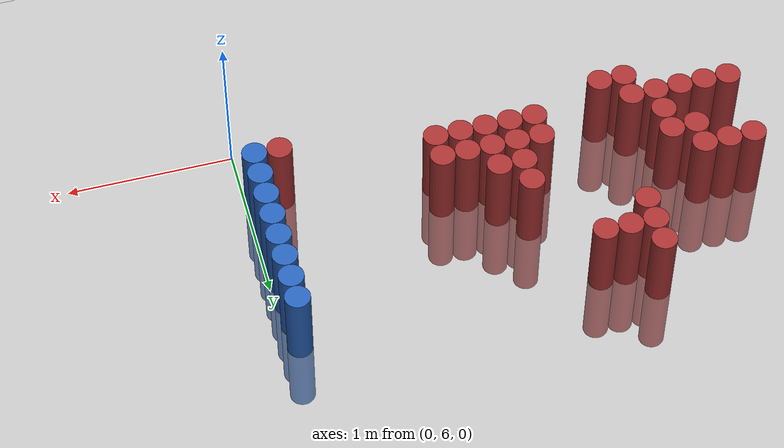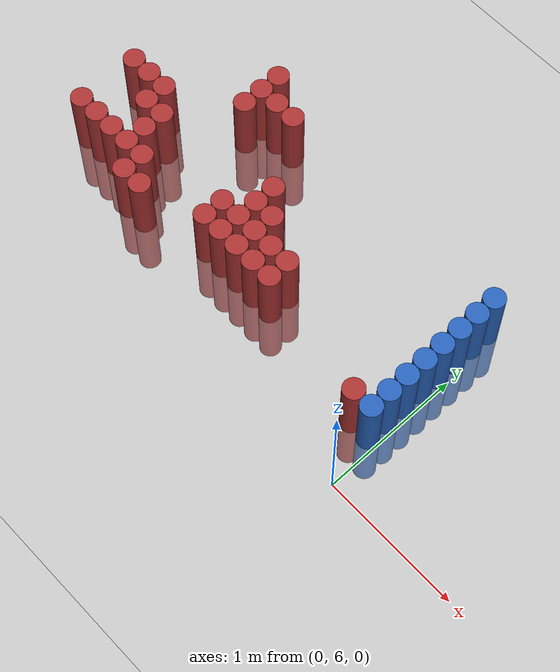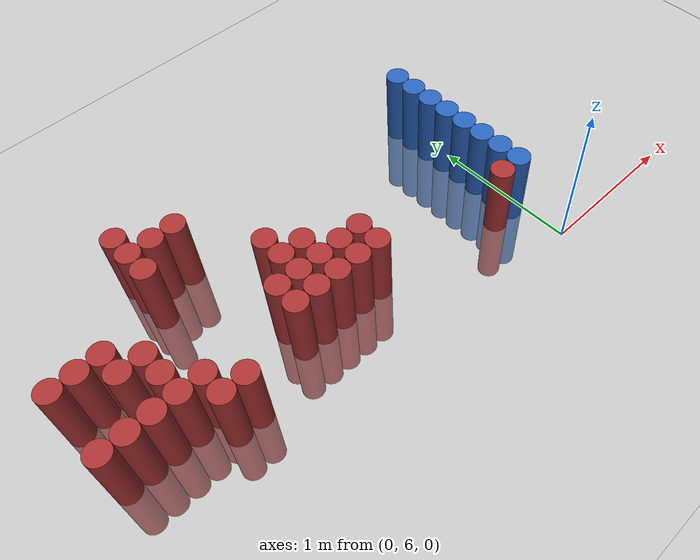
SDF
<sdf version="1.6">
 <world name="default">
  <model name="ground_plane">
   <static>1</static>
   <link name="link">
    <collision name="collision">
     <geometry><plane><normal>0 0 1</normal><size>100 100</size></plane></geometry>
     <surface><friction><ode><mu>100</mu><mu2>50</mu2></ode></friction></surface>
    </collision>
    <visual name="visual">
     <cast_shadows>0</cast_shadows>
     <geometry><plane><normal>0 0 1</normal><size>100 100</size></plane></geometry>
     <material>
      <script><uri>file://media/materials/scripts/gazebo.material</uri><name>Gazebo/Grey</name></script>
     </material>
    </visual>
   </link>
  </model>
  <model name="unit_cylinder_214">
   <static>1</static>
   <pose>-2.925000 6.525000 0.000000 0.000000 0.000000 0.000000</pose>
   <link name="link">
    <inertial>
     <mass>1</mass>
     <inertia><ixx>0.145833</ixx><ixy>0</ixy><ixz>0</ixz><iyy>0.145833</iyy><iyz>0</iyz><izz>0.125</izz></inertia>
    </inertial>
    <collision name="collision">
     <geometry><cylinder><radius>0.075000</radius><length>1</length></cylinder></geometry>
    </collision>
    <visual name="visual">
     <geometry><cylinder><radius>0.075000</radius><length>1</length></cylinder></geometry>
     <material>
      <ambient>0.648000 0.192000 0.192000 1</ambient>
      <diffuse>0.648000 0.192000 0.192000 1</diffuse>
     </material>
     <material>
      <script><name>Gazebo/Grey</name><uri>file://media/materials/scripts/gazebo.material</uri></script>
     </material>
    </visual>
    <sensor name="sensor_contact" type="contact"><contact><collision>collision</collision></contact></sensor>
   </link>
   <plugin filename="gz-sim-touchplugin-system" name="gz::sim::systems::TouchPlugin">
    <target>robot</target>
    <namespace>robot</namespace>
    <time>0.001</time>
    <enabled>true</enabled>
   </plugin>
  </model>
  <model name="unit_cylinder_215">
   <static>1</static>
   <pose>-2.925000 6.975000 0.000000 0.000000 0.000000 0.000000</pose>
   <link name="link">
    <inertial>
     <mass>1</mass>
     <inertia><ixx>0.145833</ixx><ixy>0</ixy><ixz>0</ixz><iyy>0.145833</iyy><iyz>0</iyz><izz>0.125</izz></inertia>
    </inertial>
    <collision name="collision">
     <geometry><cylinder><radius>0.075000</radius><length>1</length></cylinder></geometry>
    </collision>
    <visual name="visual">
     <geometry><cylinder><radius>0.075000</radius><length>1</length></cylinder></geometry>
     <material>
      <ambient>0.648000 0.192000 0.192000 1</ambient>
      <diffuse>0.648000 0.192000 0.192000 1</diffuse>
     </material>
     <material>
      <script><name>Gazebo/Grey</name><uri>file://media/materials/scripts/gazebo.material</uri></script>
     </material>
    </visual>
    <sensor name="sensor_contact" type="contact"><contact><collision>collision</collision></contact></sensor>
   </link>
   <plugin filename="gz-sim-touchplugin-system" name="gz::sim::systems::TouchPlugin">
    <target>robot</target>
    <namespace>robot</namespace>
    <time>0.001</time>
    <enabled>true</enabled>
   </plugin>
  </model>
  <model name="unit_cylinder_218">
   <static>1</static>
   <pose>-2.775000 6.525000 0.000000 0.000000 0.000000 0.000000</pose>
   <link name="link">
    <inertial>
     <mass>1</mass>
     <inertia><ixx>0.145833</ixx><ixy>0</ixy><ixz>0</ixz><iyy>0.145833</iyy><iyz>0</iyz><izz>0.125</izz></inertia>
    </inertial>
    <collision name="collision">
     <geometry><cylinder><radius>0.075000</radius><length>1</length></cylinder></geometry>
    </collision>
    <visual name="visual">
     <geometry><cylinder><radius>0.075000</radius><length>1</length></cylinder></geometry>
     <material>
      <ambient>0.648000 0.192000 0.192000 1</ambient>
      <diffuse>0.648000 0.192000 0.192000 1</diffuse>
     </material>
     <material>
      <script><name>Gazebo/Grey</name><uri>file://media/materials/scripts/gazebo.material</uri></script>
     </material>
    </visual>
    <sensor name="sensor_contact" type="contact"><contact><collision>collision</collision></contact></sensor>
   </link>
   <plugin filename="gz-sim-touchplugin-system" name="gz::sim::systems::TouchPlugin">
    <target>robot</target>
    <namespace>robot</namespace>
    <time>0.001</time>
    <enabled>true</enabled>
   </plugin>
  </model>
  <model name="unit_cylinder_219">
   <static>1</static>
   <pose>-2.775000 6.975000 0.000000 0.000000 0.000000 0.000000</pose>
   <link name="link">
    <inertial>
     <mass>1</mass>
     <inertia><ixx>0.145833</ixx><ixy>0</ixy><ixz>0</ixz><iyy>0.145833</iyy><iyz>0</iyz><izz>0.125</izz></inertia>
    </inertial>
    <collision name="collision">
     <geometry><cylinder><radius>0.075000</radius><length>1</length></cylinder></geometry>
    </collision>
    <visual name="visual">
     <geometry><cylinder><radius>0.075000</radius><length>1</length></cylinder></geometry>
     <material>
      <ambient>0.648000 0.192000 0.192000 1</ambient>
      <diffuse>0.648000 0.192000 0.192000 1</diffuse>
     </material>
     <material>
      <script><name>Gazebo/Grey</name><uri>file://media/materials/scripts/gazebo.material</uri></script>
     </material>
    </visual>
    <sensor name="sensor_contact" type="contact"><contact><collision>collision</collision></contact></sensor>
   </link>
   <plugin filename="gz-sim-touchplugin-system" name="gz::sim::systems::TouchPlugin">
    <target>robot</target>
    <namespace>robot</namespace>
    <time>0.001</time>
    <enabled>true</enabled>
   </plugin>
  </model>
  <model name="unit_cylinder_227">
   <static>1</static>
   <pose>-2.625000 6.525000 0.000000 0.000000 0.000000 0.000000</pose>
   <link name="link">
    <inertial>
     <mass>1</mass>
     <inertia><ixx>0.145833</ixx><ixy>0</ixy><ixz>0</ixz><iyy>0.145833</iyy><iyz>0</iyz><izz>0.125</izz></inertia>
    </inertial>
    <collision name="collision">
     <geometry><cylinder><radius>0.075000</radius><length>1</length></cylinder></geometry>
    </collision>
    <visual name="visual">
     <geometry><cylinder><radius>0.075000</radius><length>1</length></cylinder></geometry>
     <material>
      <ambient>0.648000 0.192000 0.192000 1</ambient>
      <diffuse>0.648000 0.192000 0.192000 1</diffuse>
     </material>
     <material>
      <script><name>Gazebo/Grey</name><uri>file://media/materials/scripts/gazebo.material</uri></script>
     </material>
    </visual>
    <sensor name="sensor_contact" type="contact"><contact><collision>collision</collision></contact></sensor>
   </link>
   <plugin filename="gz-sim-touchplugin-system" name="gz::sim::systems::TouchPlugin">
    <target>robot</target>
    <namespace>robot</namespace>
    <time>0.001</time>
    <enabled>true</enabled>
   </plugin>
  </model>
  <model name="unit_cylinder_228">
   <static>1</static>
   <pose>-2.625000 6.825000 0.000000 0.000000 0.000000 0.000000</pose>
   <link name="link">
    <inertial>
     <mass>1</mass>
     <inertia><ixx>0.145833</ixx><ixy>0</ixy><ixz>0</ixz><iyy>0.145833</iyy><iyz>0</iyz><izz>0.125</izz></inertia>
    </inertial>
    <collision name="collision">
     <geometry><cylinder><radius>0.075000</radius><length>1</length></cylinder></geometry>
    </collision>
    <visual name="visual">
     <geometry><cylinder><radius>0.075000</radius><length>1</length></cylinder></geometry>
     <material>
      <ambient>0.648000 0.192000 0.192000 1</ambient>
      <diffuse>0.648000 0.192000 0.192000 1</diffuse>
     </material>
     <material>
      <script><name>Gazebo/Grey</name><uri>file://media/materials/scripts/gazebo.material</uri></script>
     </material>
    </visual>
    <sensor name="sensor_contact" type="contact"><contact><collision>collision</collision></contact></sensor>
   </link>
   <plugin filename="gz-sim-touchplugin-system" name="gz::sim::systems::TouchPlugin">
    <target>robot</target>
    <namespace>robot</namespace>
    <time>0.001</time>
    <enabled>true</enabled>
   </plugin>
  </model>
  <model name="unit_cylinder_229">
   <static>1</static>
   <pose>-2.625000 6.975000 0.000000 0.000000 0.000000 0.000000</pose>
   <link name="link">
    <inertial>
     <mass>1</mass>
     <inertia><ixx>0.145833</ixx><ixy>0</ixy><ixz>0</ixz><iyy>0.145833</iyy><iyz>0</iyz><izz>0.125</izz></inertia>
    </inertial>
    <collision name="collision">
     <geometry><cylinder><radius>0.075000</radius><length>1</length></cylinder></geometry>
    </collision>
    <visual name="visual">
     <geometry><cylinder><radius>0.075000</radius><length>1</length></cylinder></geometry>
     <material>
      <ambient>0.648000 0.192000 0.192000 1</ambient>
      <diffuse>0.648000 0.192000 0.192000 1</diffuse>
     </material>
     <material>
      <script><name>Gazebo/Grey</name><uri>file://media/materials/scripts/gazebo.material</uri></script>
     </material>
    </visual>
    <sensor name="sensor_contact" type="contact"><contact><collision>collision</collision></contact></sensor>
   </link>
   <plugin filename="gz-sim-touchplugin-system" name="gz::sim::systems::TouchPlugin">
    <target>robot</target>
    <namespace>robot</namespace>
    <time>0.001</time>
    <enabled>true</enabled>
   </plugin>
  </model>
  <model name="unit_cylinder_236">
   <static>1</static>
   <pose>-2.475000 6.525000 0.000000 0.000000 0.000000 0.000000</pose>
   <link name="link">
    <inertial>
     <mass>1</mass>
     <inertia><ixx>0.145833</ixx><ixy>0</ixy><ixz>0</ixz><iyy>0.145833</iyy><iyz>0</iyz><izz>0.125</izz></inertia>
    </inertial>
    <collision name="collision">
     <geometry><cylinder><radius>0.075000</radius><length>1</length></cylinder></geometry>
    </collision>
    <visual name="visual">
     <geometry><cylinder><radius>0.075000</radius><length>1</length></cylinder></geometry>
     <material>
      <ambient>0.648000 0.192000 0.192000 1</ambient>
      <diffuse>0.648000 0.192000 0.192000 1</diffuse>
     </material>
     <material>
      <script><name>Gazebo/Grey</name><uri>file://media/materials/scripts/gazebo.material</uri></script>
     </material>
    </visual>
    <sensor name="sensor_contact" type="contact"><contact><collision>collision</collision></contact></sensor>
   </link>
   <plugin filename="gz-sim-touchplugin-system" name="gz::sim::systems::TouchPlugin">
    <target>robot</target>
    <namespace>robot</namespace>
    <time>0.001</time>
    <enabled>true</enabled>
   </plugin>
  </model>
  <model name="unit_cylinder_237">
   <static>1</static>
   <pose>-2.475000 6.675000 0.000000 0.000000 0.000000 0.000000</pose>
   <link name="link">
    <inertial>
     <mass>1</mass>
     <inertia><ixx>0.145833</ixx><ixy>0</ixy><ixz>0</ixz><iyy>0.145833</iyy><iyz>0</iyz><izz>0.125</izz></inertia>
    </inertial>
    <collision name="collision">
     <geometry><cylinder><radius>0.075000</radius><length>1</length></cylinder></geometry>
    </collision>
    <visual name="visual">
     <geometry><cylinder><radius>0.075000</radius><length>1</length></cylinder></geometry>
     <material>
      <ambient>0.648000 0.192000 0.192000 1</ambient>
      <diffuse>0.648000 0.192000 0.192000 1</diffuse>
     </material>
     <material>
      <script><name>Gazebo/Grey</name><uri>file://media/materials/scripts/gazebo.material</uri></script>
     </material>
    </visual>
    <sensor name="sensor_contact" type="contact"><contact><collision>collision</collision></contact></sensor>
   </link>
   <plugin filename="gz-sim-touchplugin-system" name="gz::sim::systems::TouchPlugin">
    <target>robot</target>
    <namespace>robot</namespace>
    <time>0.001</time>
    <enabled>true</enabled>
   </plugin>
  </model>
  <model name="unit_cylinder_238">
   <static>1</static>
   <pose>-2.475000 6.825000 0.000000 0.000000 0.000000 0.000000</pose>
   <link name="link">
    <inertial>
     <mass>1</mass>
     <inertia><ixx>0.145833</ixx><ixy>0</ixy><ixz>0</ixz><iyy>0.145833</iyy><iyz>0</iyz><izz>0.125</izz></inertia>
    </inertial>
    <collision name="collision">
     <geometry><cylinder><radius>0.075000</radius><length>1</length></cylinder></geometry>
    </collision>
    <visual name="visual">
     <geometry><cylinder><radius>0.075000</radius><length>1</length></cylinder></geometry>
     <material>
      <ambient>0.648000 0.192000 0.192000 1</ambient>
      <diffuse>0.648000 0.192000 0.192000 1</diffuse>
     </material>
     <material>
      <script><name>Gazebo/Grey</name><uri>file://media/materials/scripts/gazebo.material</uri></script>
     </material>
    </visual>
    <sensor name="sensor_contact" type="contact"><contact><collision>collision</collision></contact></sensor>
   </link>
   <plugin filename="gz-sim-touchplugin-system" name="gz::sim::systems::TouchPlugin">
    <target>robot</target>
    <namespace>robot</namespace>
    <time>0.001</time>
    <enabled>true</enabled>
   </plugin>
  </model>
  <model name="unit_cylinder_249">
   <static>1</static>
   <pose>-2.325000 6.375000 0.000000 0.000000 0.000000 0.000000</pose>
   <link name="link">
    <inertial>
     <mass>1</mass>
     <inertia><ixx>0.145833</ixx><ixy>0</ixy><ixz>0</ixz><iyy>0.145833</iyy><iyz>0</iyz><izz>0.125</izz></inertia>
    </inertial>
    <collision name="collision">
     <geometry><cylinder><radius>0.075000</radius><length>1</length></cylinder></geometry>
    </collision>
    <visual name="visual">
     <geometry><cylinder><radius>0.075000</radius><length>1</length></cylinder></geometry>
     <material>
      <ambient>0.648000 0.192000 0.192000 1</ambient>
      <diffuse>0.648000 0.192000 0.192000 1</diffuse>
     </material>
     <material>
      <script><name>Gazebo/Grey</name><uri>file://media/materials/scripts/gazebo.material</uri></script>
     </material>
    </visual>
    <sensor name="sensor_contact" type="contact"><contact><collision>collision</collision></contact></sensor>
   </link>
   <plugin filename="gz-sim-touchplugin-system" name="gz::sim::systems::TouchPlugin">
    <target>robot</target>
    <namespace>robot</namespace>
    <time>0.001</time>
    <enabled>true</enabled>
   </plugin>
  </model>
  <model name="unit_cylinder_250">
   <static>1</static>
   <pose>-2.325000 6.525000 0.000000 0.000000 0.000000 0.000000</pose>
   <link name="link">
    <inertial>
     <mass>1</mass>
     <inertia><ixx>0.145833</ixx><ixy>0</ixy><ixz>0</ixz><iyy>0.145833</iyy><iyz>0</iyz><izz>0.125</izz></inertia>
    </inertial>
    <collision name="collision">
     <geometry><cylinder><radius>0.075000</radius><length>1</length></cylinder></geometry>
    </collision>
    <visual name="visual">
     <geometry><cylinder><radius>0.075000</radius><length>1</length></cylinder></geometry>
     <material>
      <ambient>0.648000 0.192000 0.192000 1</ambient>
      <diffuse>0.648000 0.192000 0.192000 1</diffuse>
     </material>
     <material>
      <script><name>Gazebo/Grey</name><uri>file://media/materials/scripts/gazebo.material</uri></script>
     </material>
    </visual>
    <sensor name="sensor_contact" type="contact"><contact><collision>collision</collision></contact></sensor>
   </link>
   <plugin filename="gz-sim-touchplugin-system" name="gz::sim::systems::TouchPlugin">
    <target>robot</target>
    <namespace>robot</namespace>
    <time>0.001</time>
    <enabled>true</enabled>
   </plugin>
  </model>
  <model name="unit_cylinder_258">
   <static>1</static>
   <pose>-2.175000 6.375000 0.000000 0.000000 0.000000 0.000000</pose>
   <link name="link">
    <inertial>
     <mass>1</mass>
     <inertia><ixx>0.145833</ixx><ixy>0</ixy><ixz>0</ixz><iyy>0.145833</iyy><iyz>0</iyz><izz>0.125</izz></inertia>
    </inertial>
    <collision name="collision">
     <geometry><cylinder><radius>0.075000</radius><length>1</length></cylinder></geometry>
    </collision>
    <visual name="visual">
     <geometry><cylinder><radius>0.075000</radius><length>1</length></cylinder></geometry>
     <material>
      <ambient>0.648000 0.192000 0.192000 1</ambient>
      <diffuse>0.648000 0.192000 0.192000 1</diffuse>
     </material>
     <material>
      <script><name>Gazebo/Grey</name><uri>file://media/materials/scripts/gazebo.material</uri></script>
     </material>
    </visual>
    <sensor name="sensor_contact" type="contact"><contact><collision>collision</collision></contact></sensor>
   </link>
   <plugin filename="gz-sim-touchplugin-system" name="gz::sim::systems::TouchPlugin">
    <target>robot</target>
    <namespace>robot</namespace>
    <time>0.001</time>
    <enabled>true</enabled>
   </plugin>
  </model>
  <model name="unit_cylinder_259">
   <static>1</static>
   <pose>-2.175000 7.275000 0.000000 0.000000 0.000000 0.000000</pose>
   <link name="link">
    <inertial>
     <mass>1</mass>
     <inertia><ixx>0.145833</ixx><ixy>0</ixy><ixz>0</ixz><iyy>0.145833</iyy><iyz>0</iyz><izz>0.125</izz></inertia>
    </inertial>
    <collision name="collision">
     <geometry><cylinder><radius>0.075000</radius><length>1</length></cylinder></geometry>
    </collision>
    <visual name="visual">
     <geometry><cylinder><radius>0.075000</radius><length>1</length></cylinder></geometry>
     <material>
      <ambient>0.648000 0.192000 0.192000 1</ambient>
      <diffuse>0.648000 0.192000 0.192000 1</diffuse>
     </material>
     <material>
      <script><name>Gazebo/Grey</name><uri>file://media/materials/scripts/gazebo.material</uri></script>
     </material>
    </visual>
    <sensor name="sensor_contact" type="contact"><contact><collision>collision</collision></contact></sensor>
   </link>
   <plugin filename="gz-sim-touchplugin-system" name="gz::sim::systems::TouchPlugin">
    <target>robot</target>
    <namespace>robot</namespace>
    <time>0.001</time>
    <enabled>true</enabled>
   </plugin>
  </model>
  <model name="unit_cylinder_260">
   <static>1</static>
   <pose>-2.175000 7.425000 0.000000 0.000000 0.000000 0.000000</pose>
   <link name="link">
    <inertial>
     <mass>1</mass>
     <inertia><ixx>0.145833</ixx><ixy>0</ixy><ixz>0</ixz><iyy>0.145833</iyy><iyz>0</iyz><izz>0.125</izz></inertia>
    </inertial>
    <collision name="collision">
     <geometry><cylinder><radius>0.075000</radius><length>1</length></cylinder></geometry>
    </collision>
    <visual name="visual">
     <geometry><cylinder><radius>0.075000</radius><length>1</length></cylinder></geometry>
     <material>
      <ambient>0.648000 0.192000 0.192000 1</ambient>
      <diffuse>0.648000 0.192000 0.192000 1</diffuse>
     </material>
     <material>
      <script><name>Gazebo/Grey</name><uri>file://media/materials/scripts/gazebo.material</uri></script>
     </material>
    </visual>
    <sensor name="sensor_contact" type="contact"><contact><collision>collision</collision></contact></sensor>
   </link>
   <plugin filename="gz-sim-touchplugin-system" name="gz::sim::systems::TouchPlugin">
    <target>robot</target>
    <namespace>robot</namespace>
    <time>0.001</time>
    <enabled>true</enabled>
   </plugin>
  </model>
  <model name="unit_cylinder_261">
   <static>1</static>
   <pose>-2.175000 7.575000 0.000000 0.000000 0.000000 0.000000</pose>
   <link name="link">
    <inertial>
     <mass>1</mass>
     <inertia><ixx>0.145833</ixx><ixy>0</ixy><ixz>0</ixz><iyy>0.145833</iyy><iyz>0</iyz><izz>0.125</izz></inertia>
    </inertial>
    <collision name="collision">
     <geometry><cylinder><radius>0.075000</radius><length>1</length></cylinder></geometry>
    </collision>
    <visual name="visual">
     <geometry><cylinder><radius>0.075000</radius><length>1</length></cylinder></geometry>
     <material>
      <ambient>0.648000 0.192000 0.192000 1</ambient>
      <diffuse>0.648000 0.192000 0.192000 1</diffuse>
     </material>
     <material>
      <script><name>Gazebo/Grey</name><uri>file://media/materials/scripts/gazebo.material</uri></script>
     </material>
    </visual>
    <sensor name="sensor_contact" type="contact"><contact><collision>collision</collision></contact></sensor>
   </link>
   <plugin filename="gz-sim-touchplugin-system" name="gz::sim::systems::TouchPlugin">
    <target>robot</target>
    <namespace>robot</namespace>
    <time>0.001</time>
    <enabled>true</enabled>
   </plugin>
  </model>
  <model name="unit_cylinder_266">
   <static>1</static>
   <pose>-2.025000 7.425000 0.000000 0.000000 0.000000 0.000000</pose>
   <link name="link">
    <inertial>
     <mass>1</mass>
     <inertia><ixx>0.145833</ixx><ixy>0</ixy><ixz>0</ixz><iyy>0.145833</iyy><iyz>0</iyz><izz>0.125</izz></inertia>
    </inertial>
    <collision name="collision">
     <geometry><cylinder><radius>0.075000</radius><length>1</length></cylinder></geometry>
    </collision>
    <visual name="visual">
     <geometry><cylinder><radius>0.075000</radius><length>1</length></cylinder></geometry>
     <material>
      <ambient>0.648000 0.192000 0.192000 1</ambient>
      <diffuse>0.648000 0.192000 0.192000 1</diffuse>
     </material>
     <material>
      <script><name>Gazebo/Grey</name><uri>file://media/materials/scripts/gazebo.material</uri></script>
     </material>
    </visual>
    <sensor name="sensor_contact" type="contact"><contact><collision>collision</collision></contact></sensor>
   </link>
   <plugin filename="gz-sim-touchplugin-system" name="gz::sim::systems::TouchPlugin">
    <target>robot</target>
    <namespace>robot</namespace>
    <time>0.001</time>
    <enabled>true</enabled>
   </plugin>
  </model>
  <model name="unit_cylinder_277">
   <static>1</static>
   <pose>-1.875000 7.425000 0.000000 0.000000 0.000000 0.000000</pose>
   <link name="link">
    <inertial>
     <mass>1</mass>
     <inertia><ixx>0.145833</ixx><ixy>0</ixy><ixz>0</ixz><iyy>0.145833</iyy><iyz>0</iyz><izz>0.125</izz></inertia>
    </inertial>
    <collision name="collision">
     <geometry><cylinder><radius>0.075000</radius><length>1</length></cylinder></geometry>
    </collision>
    <visual name="visual">
     <geometry><cylinder><radius>0.075000</radius><length>1</length></cylinder></geometry>
     <material>
      <ambient>0.648000 0.192000 0.192000 1</ambient>
      <diffuse>0.648000 0.192000 0.192000 1</diffuse>
     </material>
     <material>
      <script><name>Gazebo/Grey</name><uri>file://media/materials/scripts/gazebo.material</uri></script>
     </material>
    </visual>
    <sensor name="sensor_contact" type="contact"><contact><collision>collision</collision></contact></sensor>
   </link>
   <plugin filename="gz-sim-touchplugin-system" name="gz::sim::systems::TouchPlugin">
    <target>robot</target>
    <namespace>robot</namespace>
    <time>0.001</time>
    <enabled>true</enabled>
   </plugin>
  </model>
  <model name="unit_cylinder_286">
   <static>1</static>
   <pose>-1.725000 6.525000 0.000000 0.000000 0.000000 0.000000</pose>
   <link name="link">
    <inertial>
     <mass>1</mass>
     <inertia><ixx>0.145833</ixx><ixy>0</ixy><ixz>0</ixz><iyy>0.145833</iyy><iyz>0</iyz><izz>0.125</izz></inertia>
    </inertial>
    <collision name="collision">
     <geometry><cylinder><radius>0.075000</radius><length>1</length></cylinder></geometry>
    </collision>
    <visual name="visual">
     <geometry><cylinder><radius>0.075000</radius><length>1</length></cylinder></geometry>
     <material>
      <ambient>0.648000 0.192000 0.192000 1</ambient>
      <diffuse>0.648000 0.192000 0.192000 1</diffuse>
     </material>
     <material>
      <script><name>Gazebo/Grey</name><uri>file://media/materials/scripts/gazebo.material</uri></script>
     </material>
    </visual>
    <sensor name="sensor_contact" type="contact"><contact><collision>collision</collision></contact></sensor>
   </link>
   <plugin filename="gz-sim-touchplugin-system" name="gz::sim::systems::TouchPlugin">
    <target>robot</target>
    <namespace>robot</namespace>
    <time>0.001</time>
    <enabled>true</enabled>
   </plugin>
  </model>
  <model name="unit_cylinder_287">
   <static>1</static>
   <pose>-1.725000 6.675000 0.000000 0.000000 0.000000 0.000000</pose>
   <link name="link">
    <inertial>
     <mass>1</mass>
     <inertia><ixx>0.145833</ixx><ixy>0</ixy><ixz>0</ixz><iyy>0.145833</iyy><iyz>0</iyz><izz>0.125</izz></inertia>
    </inertial>
    <collision name="collision">
     <geometry><cylinder><radius>0.075000</radius><length>1</length></cylinder></geometry>
    </collision>
    <visual name="visual">
     <geometry><cylinder><radius>0.075000</radius><length>1</length></cylinder></geometry>
     <material>
      <ambient>0.648000 0.192000 0.192000 1</ambient>
      <diffuse>0.648000 0.192000 0.192000 1</diffuse>
     </material>
     <material>
      <script><name>Gazebo/Grey</name><uri>file://media/materials/scripts/gazebo.material</uri></script>
     </material>
    </visual>
    <sensor name="sensor_contact" type="contact"><contact><collision>collision</collision></contact></sensor>
   </link>
   <plugin filename="gz-sim-touchplugin-system" name="gz::sim::systems::TouchPlugin">
    <target>robot</target>
    <namespace>robot</namespace>
    <time>0.001</time>
    <enabled>true</enabled>
   </plugin>
  </model>
  <model name="unit_cylinder_291">
   <static>1</static>
   <pose>-1.575000 6.525000 0.000000 0.000000 0.000000 0.000000</pose>
   <link name="link">
    <inertial>
     <mass>1</mass>
     <inertia><ixx>0.145833</ixx><ixy>0</ixy><ixz>0</ixz><iyy>0.145833</iyy><iyz>0</iyz><izz>0.125</izz></inertia>
    </inertial>
    <collision name="collision">
     <geometry><cylinder><radius>0.075000</radius><length>1</length></cylinder></geometry>
    </collision>
    <visual name="visual">
     <geometry><cylinder><radius>0.075000</radius><length>1</length></cylinder></geometry>
     <material>
      <ambient>0.648000 0.192000 0.192000 1</ambient>
      <diffuse>0.648000 0.192000 0.192000 1</diffuse>
     </material>
     <material>
      <script><name>Gazebo/Grey</name><uri>file://media/materials/scripts/gazebo.material</uri></script>
     </material>
    </visual>
    <sensor name="sensor_contact" type="contact"><contact><collision>collision</collision></contact></sensor>
   </link>
   <plugin filename="gz-sim-touchplugin-system" name="gz::sim::systems::TouchPlugin">
    <target>robot</target>
    <namespace>robot</namespace>
    <time>0.001</time>
    <enabled>true</enabled>
   </plugin>
  </model>
  <model name="unit_cylinder_292">
   <static>1</static>
   <pose>-1.575000 6.675000 0.000000 0.000000 0.000000 0.000000</pose>
   <link name="link">
    <inertial>
     <mass>1</mass>
     <inertia><ixx>0.145833</ixx><ixy>0</ixy><ixz>0</ixz><iyy>0.145833</iyy><iyz>0</iyz><izz>0.125</izz></inertia>
    </inertial>
    <collision name="collision">
     <geometry><cylinder><radius>0.075000</radius><length>1</length></cylinder></geometry>
    </collision>
    <visual name="visual">
     <geometry><cylinder><radius>0.075000</radius><length>1</length></cylinder></geometry>
     <material>
      <ambient>0.648000 0.192000 0.192000 1</ambient>
      <diffuse>0.648000 0.192000 0.192000 1</diffuse>
     </material>
     <material>
      <script><name>Gazebo/Grey</name><uri>file://media/materials/scripts/gazebo.material</uri></script>
     </material>
    </visual>
    <sensor name="sensor_contact" type="contact"><contact><collision>collision</collision></contact></sensor>
   </link>
   <plugin filename="gz-sim-touchplugin-system" name="gz::sim::systems::TouchPlugin">
    <target>robot</target>
    <namespace>robot</namespace>
    <time>0.001</time>
    <enabled>true</enabled>
   </plugin>
  </model>
  <model name="unit_cylinder_293">
   <static>1</static>
   <pose>-1.575000 6.825000 0.000000 0.000000 0.000000 0.000000</pose>
   <link name="link">
    <inertial>
     <mass>1</mass>
     <inertia><ixx>0.145833</ixx><ixy>0</ixy><ixz>0</ixz><iyy>0.145833</iyy><iyz>0</iyz><izz>0.125</izz></inertia>
    </inertial>
    <collision name="collision">
     <geometry><cylinder><radius>0.075000</radius><length>1</length></cylinder></geometry>
    </collision>
    <visual name="visual">
     <geometry><cylinder><radius>0.075000</radius><length>1</length></cylinder></geometry>
     <material>
      <ambient>0.648000 0.192000 0.192000 1</ambient>
      <diffuse>0.648000 0.192000 0.192000 1</diffuse>
     </material>
     <material>
      <script><name>Gazebo/Grey</name><uri>file://media/materials/scripts/gazebo.material</uri></script>
     </material>
    </visual>
    <sensor name="sensor_contact" type="contact"><contact><collision>collision</collision></contact></sensor>
   </link>
   <plugin filename="gz-sim-touchplugin-system" name="gz::sim::systems::TouchPlugin">
    <target>robot</target>
    <namespace>robot</namespace>
    <time>0.001</time>
    <enabled>true</enabled>
   </plugin>
  </model>
  <model name="unit_cylinder_294">
   <static>1</static>
   <pose>-1.575000 6.975000 0.000000 0.000000 0.000000 0.000000</pose>
   <link name="link">
    <inertial>
     <mass>1</mass>
     <inertia><ixx>0.145833</ixx><ixy>0</ixy><ixz>0</ixz><iyy>0.145833</iyy><iyz>0</iyz><izz>0.125</izz></inertia>
    </inertial>
    <collision name="collision">
     <geometry><cylinder><radius>0.075000</radius><length>1</length></cylinder></geometry>
    </collision>
    <visual name="visual">
     <geometry><cylinder><radius>0.075000</radius><length>1</length></cylinder></geometry>
     <material>
      <ambient>0.648000 0.192000 0.192000 1</ambient>
      <diffuse>0.648000 0.192000 0.192000 1</diffuse>
     </material>
     <material>
      <script><name>Gazebo/Grey</name><uri>file://media/materials/scripts/gazebo.material</uri></script>
     </material>
    </visual>
    <sensor name="sensor_contact" type="contact"><contact><collision>collision</collision></contact></sensor>
   </link>
   <plugin filename="gz-sim-touchplugin-system" name="gz::sim::systems::TouchPlugin">
    <target>robot</target>
    <namespace>robot</namespace>
    <time>0.001</time>
    <enabled>true</enabled>
   </plugin>
  </model>
  <model name="unit_cylinder_299">
   <static>1</static>
   <pose>-1.425000 6.525000 0.000000 0.000000 0.000000 0.000000</pose>
   <link name="link">
    <inertial>
     <mass>1</mass>
     <inertia><ixx>0.145833</ixx><ixy>0</ixy><ixz>0</ixz><iyy>0.145833</iyy><iyz>0</iyz><izz>0.125</izz></inertia>
    </inertial>
    <collision name="collision">
     <geometry><cylinder><radius>0.075000</radius><length>1</length></cylinder></geometry>
    </collision>
    <visual name="visual">
     <geometry><cylinder><radius>0.075000</radius><length>1</length></cylinder></geometry>
     <material>
      <ambient>0.648000 0.192000 0.192000 1</ambient>
      <diffuse>0.648000 0.192000 0.192000 1</diffuse>
     </material>
     <material>
      <script><name>Gazebo/Grey</name><uri>file://media/materials/scripts/gazebo.material</uri></script>
     </material>
    </visual>
    <sensor name="sensor_contact" type="contact"><contact><collision>collision</collision></contact></sensor>
   </link>
   <plugin filename="gz-sim-touchplugin-system" name="gz::sim::systems::TouchPlugin">
    <target>robot</target>
    <namespace>robot</namespace>
    <time>0.001</time>
    <enabled>true</enabled>
   </plugin>
  </model>
  <model name="unit_cylinder_300">
   <static>1</static>
   <pose>-1.425000 6.675000 0.000000 0.000000 0.000000 0.000000</pose>
   <link name="link">
    <inertial>
     <mass>1</mass>
     <inertia><ixx>0.145833</ixx><ixy>0</ixy><ixz>0</ixz><iyy>0.145833</iyy><iyz>0</iyz><izz>0.125</izz></inertia>
    </inertial>
    <collision name="collision">
     <geometry><cylinder><radius>0.075000</radius><length>1</length></cylinder></geometry>
    </collision>
    <visual name="visual">
     <geometry><cylinder><radius>0.075000</radius><length>1</length></cylinder></geometry>
     <material>
      <ambient>0.648000 0.192000 0.192000 1</ambient>
      <diffuse>0.648000 0.192000 0.192000 1</diffuse>
     </material>
     <material>
      <script><name>Gazebo/Grey</name><uri>file://media/materials/scripts/gazebo.material</uri></script>
     </material>
    </visual>
    <sensor name="sensor_contact" type="contact"><contact><collision>collision</collision></contact></sensor>
   </link>
   <plugin filename="gz-sim-touchplugin-system" name="gz::sim::systems::TouchPlugin">
    <target>robot</target>
    <namespace>robot</namespace>
    <time>0.001</time>
    <enabled>true</enabled>
   </plugin>
  </model>
  <model name="unit_cylinder_301">
   <static>1</static>
   <pose>-1.425000 6.825000 0.000000 0.000000 0.000000 0.000000</pose>
   <link name="link">
    <inertial>
     <mass>1</mass>
     <inertia><ixx>0.145833</ixx><ixy>0</ixy><ixz>0</ixz><iyy>0.145833</iyy><iyz>0</iyz><izz>0.125</izz></inertia>
    </inertial>
    <collision name="collision">
     <geometry><cylinder><radius>0.075000</radius><length>1</length></cylinder></geometry>
    </collision>
    <visual name="visual">
     <geometry><cylinder><radius>0.075000</radius><length>1</length></cylinder></geometry>
     <material>
      <ambient>0.648000 0.192000 0.192000 1</ambient>
      <diffuse>0.648000 0.192000 0.192000 1</diffuse>
     </material>
     <material>
      <script><name>Gazebo/Grey</name><uri>file://media/materials/scripts/gazebo.material</uri></script>
     </material>
    </visual>
    <sensor name="sensor_contact" type="contact"><contact><collision>collision</collision></contact></sensor>
   </link>
   <plugin filename="gz-sim-touchplugin-system" name="gz::sim::systems::TouchPlugin">
    <target>robot</target>
    <namespace>robot</namespace>
    <time>0.001</time>
    <enabled>true</enabled>
   </plugin>
  </model>
  <model name="unit_cylinder_304">
   <static>1</static>
   <pose>-1.275000 6.525000 0.000000 0.000000 0.000000 0.000000</pose>
   <link name="link">
    <inertial>
     <mass>1</mass>
     <inertia><ixx>0.145833</ixx><ixy>0</ixy><ixz>0</ixz><iyy>0.145833</iyy><iyz>0</iyz><izz>0.125</izz></inertia>
    </inertial>
    <collision name="collision">
     <geometry><cylinder><radius>0.075000</radius><length>1</length></cylinder></geometry>
    </collision>
    <visual name="visual">
     <geometry><cylinder><radius>0.075000</radius><length>1</length></cylinder></geometry>
     <material>
      <ambient>0.648000 0.192000 0.192000 1</ambient>
      <diffuse>0.648000 0.192000 0.192000 1</diffuse>
     </material>
     <material>
      <script><name>Gazebo/Grey</name><uri>file://media/materials/scripts/gazebo.material</uri></script>
     </material>
    </visual>
    <sensor name="sensor_contact" type="contact"><contact><collision>collision</collision></contact></sensor>
   </link>
   <plugin filename="gz-sim-touchplugin-system" name="gz::sim::systems::TouchPlugin">
    <target>robot</target>
    <namespace>robot</namespace>
    <time>0.001</time>
    <enabled>true</enabled>
   </plugin>
  </model>
  <model name="unit_cylinder_305">
   <static>1</static>
   <pose>-1.275000 6.675000 0.000000 0.000000 0.000000 0.000000</pose>
   <link name="link">
    <inertial>
     <mass>1</mass>
     <inertia><ixx>0.145833</ixx><ixy>0</ixy><ixz>0</ixz><iyy>0.145833</iyy><iyz>0</iyz><izz>0.125</izz></inertia>
    </inertial>
    <collision name="collision">
     <geometry><cylinder><radius>0.075000</radius><length>1</length></cylinder></geometry>
    </collision>
    <visual name="visual">
     <geometry><cylinder><radius>0.075000</radius><length>1</length></cylinder></geometry>
     <material>
      <ambient>0.648000 0.192000 0.192000 1</ambient>
      <diffuse>0.648000 0.192000 0.192000 1</diffuse>
     </material>
     <material>
      <script><name>Gazebo/Grey</name><uri>file://media/materials/scripts/gazebo.material</uri></script>
     </material>
    </visual>
    <sensor name="sensor_contact" type="contact"><contact><collision>collision</collision></contact></sensor>
   </link>
   <plugin filename="gz-sim-touchplugin-system" name="gz::sim::systems::TouchPlugin">
    <target>robot</target>
    <namespace>robot</namespace>
    <time>0.001</time>
    <enabled>true</enabled>
   </plugin>
  </model>
  <model name="unit_cylinder_306">
   <static>1</static>
   <pose>-1.125000 6.525000 0.000000 0.000000 0.000000 0.000000</pose>
   <link name="link">
    <inertial>
     <mass>1</mass>
     <inertia><ixx>0.145833</ixx><ixy>0</ixy><ixz>0</ixz><iyy>0.145833</iyy><iyz>0</iyz><izz>0.125</izz></inertia>
    </inertial>
    <collision name="collision">
     <geometry><cylinder><radius>0.075000</radius><length>1</length></cylinder></geometry>
    </collision>
    <visual name="visual">
     <geometry><cylinder><radius>0.075000</radius><length>1</length></cylinder></geometry>
     <material>
      <ambient>0.648000 0.192000 0.192000 1</ambient>
      <diffuse>0.648000 0.192000 0.192000 1</diffuse>
     </material>
     <material>
      <script><name>Gazebo/Grey</name><uri>file://media/materials/scripts/gazebo.material</uri></script>
     </material>
    </visual>
    <sensor name="sensor_contact" type="contact"><contact><collision>collision</collision></contact></sensor>
   </link>
   <plugin filename="gz-sim-touchplugin-system" name="gz::sim::systems::TouchPlugin">
    <target>robot</target>
    <namespace>robot</namespace>
    <time>0.001</time>
    <enabled>true</enabled>
   </plugin>
  </model>
  <model name="unit_cylinder_307">
   <static>1</static>
   <pose>-1.125000 6.675000 0.000000 0.000000 0.000000 0.000000</pose>
   <link name="link">
    <inertial>
     <mass>1</mass>
     <inertia><ixx>0.145833</ixx><ixy>0</ixy><ixz>0</ixz><iyy>0.145833</iyy><iyz>0</iyz><izz>0.125</izz></inertia>
    </inertial>
    <collision name="collision">
     <geometry><cylinder><radius>0.075000</radius><length>1</length></cylinder></geometry>
    </collision>
    <visual name="visual">
     <geometry><cylinder><radius>0.075000</radius><length>1</length></cylinder></geometry>
     <material>
      <ambient>0.648000 0.192000 0.192000 1</ambient>
      <diffuse>0.648000 0.192000 0.192000 1</diffuse>
     </material>
     <material>
      <script><name>Gazebo/Grey</name><uri>file://media/materials/scripts/gazebo.material</uri></script>
     </material>
    </visual>
    <sensor name="sensor_contact" type="contact"><contact><collision>collision</collision></contact></sensor>
   </link>
   <plugin filename="gz-sim-touchplugin-system" name="gz::sim::systems::TouchPlugin">
    <target>robot</target>
    <namespace>robot</namespace>
    <time>0.001</time>
    <enabled>true</enabled>
   </plugin>
  </model>
  <model name="unit_cylinder_322">
   <static>1</static>
   <pose>-0.225000 6.375000 0.000000 0.000000 0.000000 0.000000</pose>
   <link name="link">
    <inertial>
     <mass>1</mass>
     <inertia><ixx>0.145833</ixx><ixy>0</ixy><ixz>0</ixz><iyy>0.145833</iyy><iyz>0</iyz><izz>0.125</izz></inertia>
    </inertial>
    <collision name="collision">
     <geometry><cylinder><radius>0.075000</radius><length>1</length></cylinder></geometry>
    </collision>
    <visual name="visual">
     <geometry><cylinder><radius>0.075000</radius><length>1</length></cylinder></geometry>
     <material>
      <ambient>0.648000 0.192000 0.192000 1</ambient>
      <diffuse>0.648000 0.192000 0.192000 1</diffuse>
     </material>
     <material>
      <script><name>Gazebo/Grey</name><uri>file://media/materials/scripts/gazebo.material</uri></script>
     </material>
    </visual>
    <sensor name="sensor_contact" type="contact"><contact><collision>collision</collision></contact></sensor>
   </link>
   <plugin filename="gz-sim-touchplugin-system" name="gz::sim::systems::TouchPlugin">
    <target>robot</target>
    <namespace>robot</namespace>
    <time>0.001</time>
    <enabled>true</enabled>
   </plugin>
  </model>
  <model name="unit_cylinder_335">
   <static>1</static>
   <pose>-0.075000 6.375000 0.000000 0.000000 0.000000 0.000000</pose>
   <link name="link">
    <inertial>
     <mass>1</mass>
     <inertia><ixx>0.145833</ixx><ixy>0</ixy><ixz>0</ixz><iyy>0.145833</iyy><iyz>0</iyz><izz>0.125</izz></inertia>
    </inertial>
    <collision name="collision">
     <geometry><cylinder><radius>0.075000</radius><length>1</length></cylinder></geometry>
    </collision>
    <visual name="visual">
     <geometry><cylinder><radius>0.075000</radius><length>1</length></cylinder></geometry>
     <material>
      <ambient>0.152000 0.379000 0.720000 1</ambient>
      <diffuse>0.152000 0.379000 0.720000 1</diffuse>
     </material>
     <material>
      <script><name>Gazebo/Grey</name><uri>file://media/materials/scripts/gazebo.material</uri></script>
     </material>
    </visual>
    <sensor name="sensor_contact" type="contact"><contact><collision>collision</collision></contact></sensor>
   </link>
   <plugin filename="gz-sim-touchplugin-system" name="gz::sim::systems::TouchPlugin">
    <target>robot</target>
    <namespace>robot</namespace>
    <time>0.001</time>
    <enabled>true</enabled>
   </plugin>
  </model>
  <model name="unit_cylinder_336">
   <static>1</static>
   <pose>-0.075000 6.525000 0.000000 0.000000 0.000000 0.000000</pose>
   <link name="link">
    <inertial>
     <mass>1</mass>
     <inertia><ixx>0.145833</ixx><ixy>0</ixy><ixz>0</ixz><iyy>0.145833</iyy><iyz>0</iyz><izz>0.125</izz></inertia>
    </inertial>
    <collision name="collision">
     <geometry><cylinder><radius>0.075000</radius><length>1</length></cylinder></geometry>
    </collision>
    <visual name="visual">
     <geometry><cylinder><radius>0.075000</radius><length>1</length></cylinder></geometry>
     <material>
      <ambient>0.152000 0.379000 0.720000 1</ambient>
      <diffuse>0.152000 0.379000 0.720000 1</diffuse>
     </material>
     <material>
      <script><name>Gazebo/Grey</name><uri>file://media/materials/scripts/gazebo.material</uri></script>
     </material>
    </visual>
    <sensor name="sensor_contact" type="contact"><contact><collision>collision</collision></contact></sensor>
   </link>
   <plugin filename="gz-sim-touchplugin-system" name="gz::sim::systems::TouchPlugin">
    <target>robot</target>
    <namespace>robot</namespace>
    <time>0.001</time>
    <enabled>true</enabled>
   </plugin>
  </model>
  <model name="unit_cylinder_337">
   <static>1</static>
   <pose>-0.075000 6.675000 0.000000 0.000000 0.000000 0.000000</pose>
   <link name="link">
    <inertial>
     <mass>1</mass>
     <inertia><ixx>0.145833</ixx><ixy>0</ixy><ixz>0</ixz><iyy>0.145833</iyy><iyz>0</iyz><izz>0.125</izz></inertia>
    </inertial>
    <collision name="collision">
     <geometry><cylinder><radius>0.075000</radius><length>1</length></cylinder></geometry>
    </collision>
    <visual name="visual">
     <geometry><cylinder><radius>0.075000</radius><length>1</length></cylinder></geometry>
     <material>
      <ambient>0.152000 0.379000 0.720000 1</ambient>
      <diffuse>0.152000 0.379000 0.720000 1</diffuse>
     </material>
     <material>
      <script><name>Gazebo/Grey</name><uri>file://media/materials/scripts/gazebo.material</uri></script>
     </material>
    </visual>
    <sensor name="sensor_contact" type="contact"><contact><collision>collision</collision></contact></sensor>
   </link>
   <plugin filename="gz-sim-touchplugin-system" name="gz::sim::systems::TouchPlugin">
    <target>robot</target>
    <namespace>robot</namespace>
    <time>0.001</time>
    <enabled>true</enabled>
   </plugin>
  </model>
  <model name="unit_cylinder_338">
   <static>1</static>
   <pose>-0.075000 6.825000 0.000000 0.000000 0.000000 0.000000</pose>
   <link name="link">
    <inertial>
     <mass>1</mass>
     <inertia><ixx>0.145833</ixx><ixy>0</ixy><ixz>0</ixz><iyy>0.145833</iyy><iyz>0</iyz><izz>0.125</izz></inertia>
    </inertial>
    <collision name="collision">
     <geometry><cylinder><radius>0.075000</radius><length>1</length></cylinder></geometry>
    </collision>
    <visual name="visual">
     <geometry><cylinder><radius>0.075000</radius><length>1</length></cylinder></geometry>
     <material>
      <ambient>0.152000 0.379000 0.720000 1</ambient>
      <diffuse>0.152000 0.379000 0.720000 1</diffuse>
     </material>
     <material>
      <script><name>Gazebo/Grey</name><uri>file://media/materials/scripts/gazebo.material</uri></script>
     </material>
    </visual>
    <sensor name="sensor_contact" type="contact"><contact><collision>collision</collision></contact></sensor>
   </link>
   <plugin filename="gz-sim-touchplugin-system" name="gz::sim::systems::TouchPlugin">
    <target>robot</target>
    <namespace>robot</namespace>
    <time>0.001</time>
    <enabled>true</enabled>
   </plugin>
  </model>
  <model name="unit_cylinder_339">
   <static>1</static>
   <pose>-0.075000 6.975000 0.000000 0.000000 0.000000 0.000000</pose>
   <link name="link">
    <inertial>
     <mass>1</mass>
     <inertia><ixx>0.145833</ixx><ixy>0</ixy><ixz>0</ixz><iyy>0.145833</iyy><iyz>0</iyz><izz>0.125</izz></inertia>
    </inertial>
    <collision name="collision">
     <geometry><cylinder><radius>0.075000</radius><length>1</length></cylinder></geometry>
    </collision>
    <visual name="visual">
     <geometry><cylinder><radius>0.075000</radius><length>1</length></cylinder></geometry>
     <material>
      <ambient>0.152000 0.379000 0.720000 1</ambient>
      <diffuse>0.152000 0.379000 0.720000 1</diffuse>
     </material>
     <material>
      <script><name>Gazebo/Grey</name><uri>file://media/materials/scripts/gazebo.material</uri></script>
     </material>
    </visual>
    <sensor name="sensor_contact" type="contact"><contact><collision>collision</collision></contact></sensor>
   </link>
   <plugin filename="gz-sim-touchplugin-system" name="gz::sim::systems::TouchPlugin">
    <target>robot</target>
    <namespace>robot</namespace>
    <time>0.001</time>
    <enabled>true</enabled>
   </plugin>
  </model>
  <model name="unit_cylinder_340">
   <static>1</static>
   <pose>-0.075000 7.125000 0.000000 0.000000 0.000000 0.000000</pose>
   <link name="link">
    <inertial>
     <mass>1</mass>
     <inertia><ixx>0.145833</ixx><ixy>0</ixy><ixz>0</ixz><iyy>0.145833</iyy><iyz>0</iyz><izz>0.125</izz></inertia>
    </inertial>
    <collision name="collision">
     <geometry><cylinder><radius>0.075000</radius><length>1</length></cylinder></geometry>
    </collision>
    <visual name="visual">
     <geometry><cylinder><radius>0.075000</radius><length>1</length></cylinder></geometry>
     <material>
      <ambient>0.152000 0.379000 0.720000 1</ambient>
      <diffuse>0.152000 0.379000 0.720000 1</diffuse>
     </material>
     <material>
      <script><name>Gazebo/Grey</name><uri>file://media/materials/scripts/gazebo.material</uri></script>
     </material>
    </visual>
    <sensor name="sensor_contact" type="contact"><contact><collision>collision</collision></contact></sensor>
   </link>
   <plugin filename="gz-sim-touchplugin-system" name="gz::sim::systems::TouchPlugin">
    <target>robot</target>
    <namespace>robot</namespace>
    <time>0.001</time>
    <enabled>true</enabled>
   </plugin>
  </model>
  <model name="unit_cylinder_341">
   <static>1</static>
   <pose>-0.075000 7.275000 0.000000 0.000000 0.000000 0.000000</pose>
   <link name="link">
    <inertial>
     <mass>1</mass>
     <inertia><ixx>0.145833</ixx><ixy>0</ixy><ixz>0</ixz><iyy>0.145833</iyy><iyz>0</iyz><izz>0.125</izz></inertia>
    </inertial>
    <collision name="collision">
     <geometry><cylinder><radius>0.075000</radius><length>1</length></cylinder></geometry>
    </collision>
    <visual name="visual">
     <geometry><cylinder><radius>0.075000</radius><length>1</length></cylinder></geometry>
     <material>
      <ambient>0.152000 0.379000 0.720000 1</ambient>
      <diffuse>0.152000 0.379000 0.720000 1</diffuse>
     </material>
     <material>
      <script><name>Gazebo/Grey</name><uri>file://media/materials/scripts/gazebo.material</uri></script>
     </material>
    </visual>
    <sensor name="sensor_contact" type="contact"><contact><collision>collision</collision></contact></sensor>
   </link>
   <plugin filename="gz-sim-touchplugin-system" name="gz::sim::systems::TouchPlugin">
    <target>robot</target>
    <namespace>robot</namespace>
    <time>0.001</time>
    <enabled>true</enabled>
   </plugin>
  </model>
  <model name="unit_cylinder_342">
   <static>1</static>
   <pose>-0.075000 7.425000 0.000000 0.000000 0.000000 0.000000</pose>
   <link name="link">
    <inertial>
     <mass>1</mass>
     <inertia><ixx>0.145833</ixx><ixy>0</ixy><ixz>0</ixz><iyy>0.145833</iyy><iyz>0</iyz><izz>0.125</izz></inertia>
    </inertial>
    <collision name="collision">
     <geometry><cylinder><radius>0.075000</radius><length>1</length></cylinder></geometry>
    </collision>
    <visual name="visual">
     <geometry><cylinder><radius>0.075000</radius><length>1</length></cylinder></geometry>
     <material>
      <ambient>0.152000 0.379000 0.720000 1</ambient>
      <diffuse>0.152000 0.379000 0.720000 1</diffuse>
     </material>
     <material>
      <script><name>Gazebo/Grey</name><uri>file://media/materials/scripts/gazebo.material</uri></script>
     </material>
    </visual>
    <sensor name="sensor_contact" type="contact"><contact><collision>collision</collision></contact></sensor>
   </link>
   <plugin filename="gz-sim-touchplugin-system" name="gz::sim::systems::TouchPlugin">
    <target>robot</target>
    <namespace>robot</namespace>
    <time>0.001</time>
    <enabled>true</enabled>
   </plugin>
  </model>
 </world>
</sdf>
